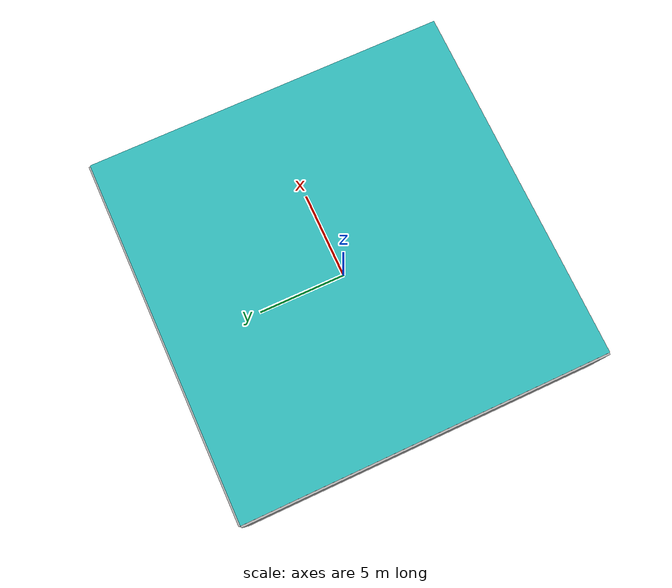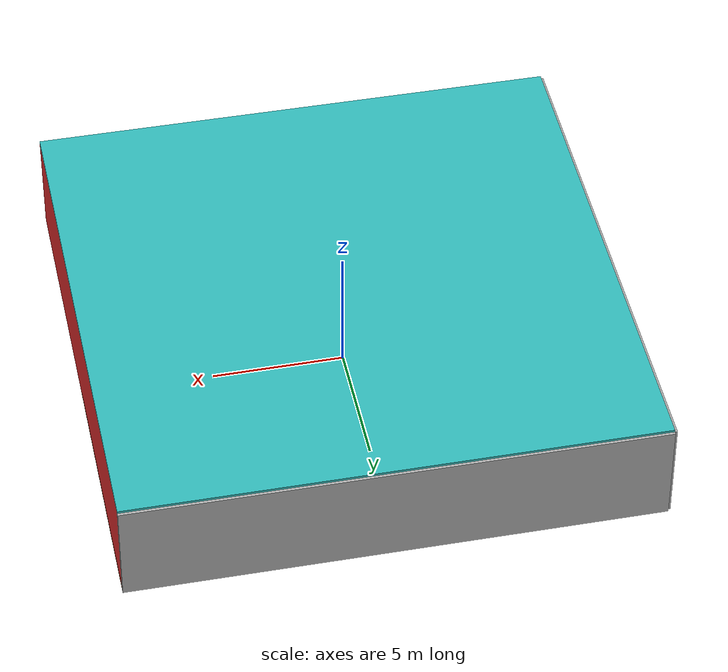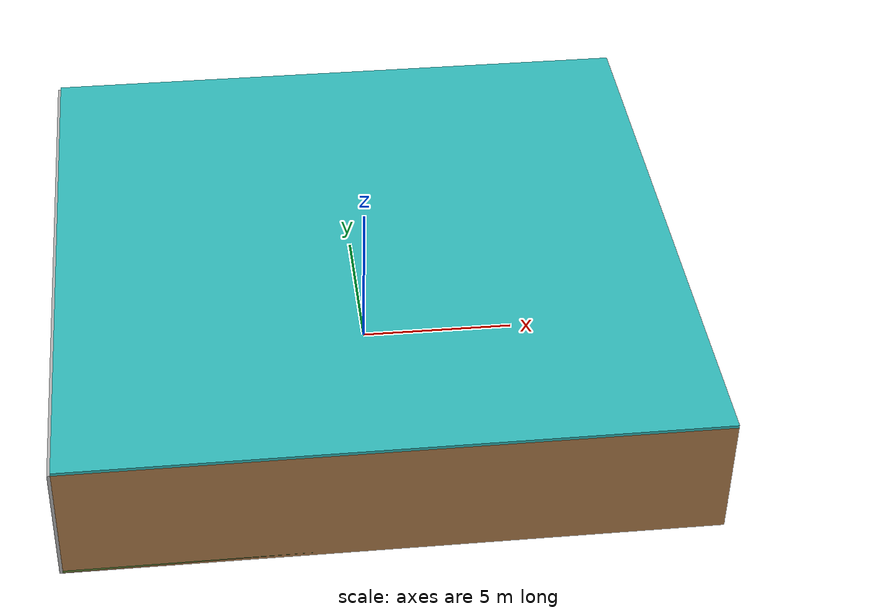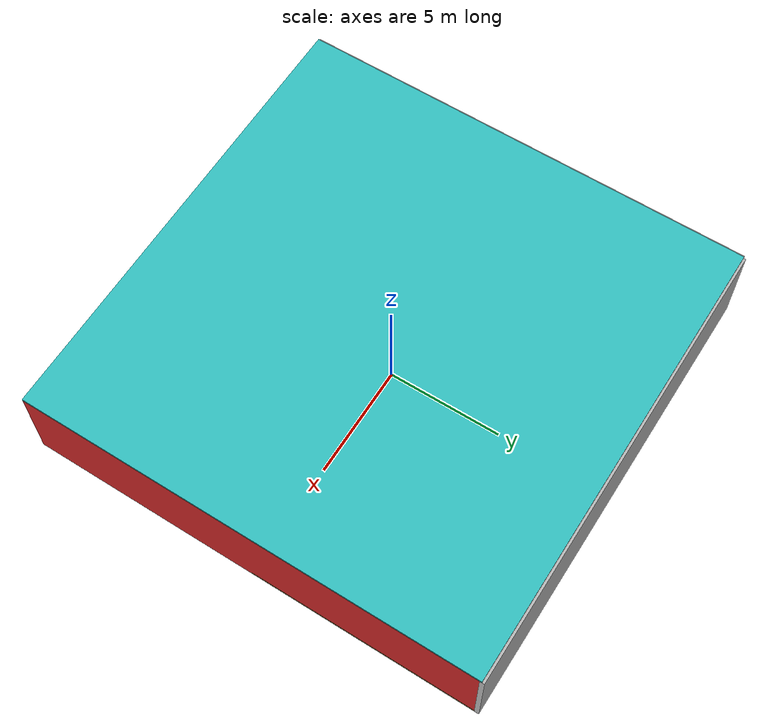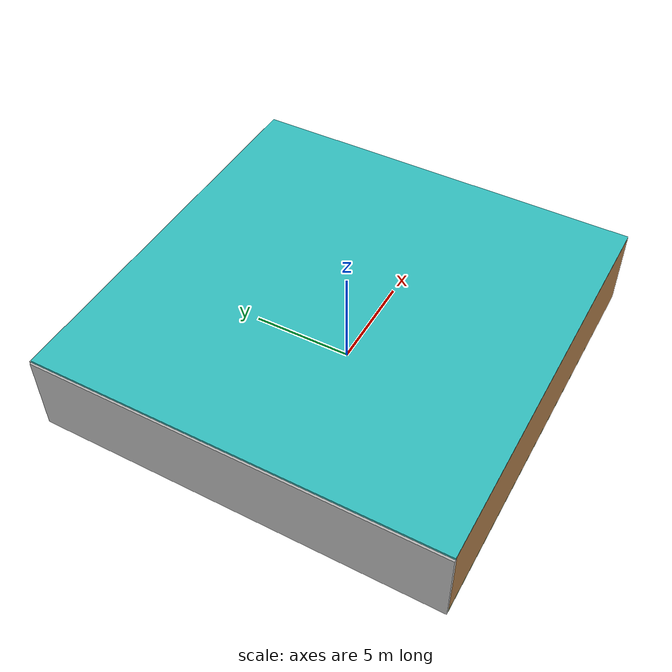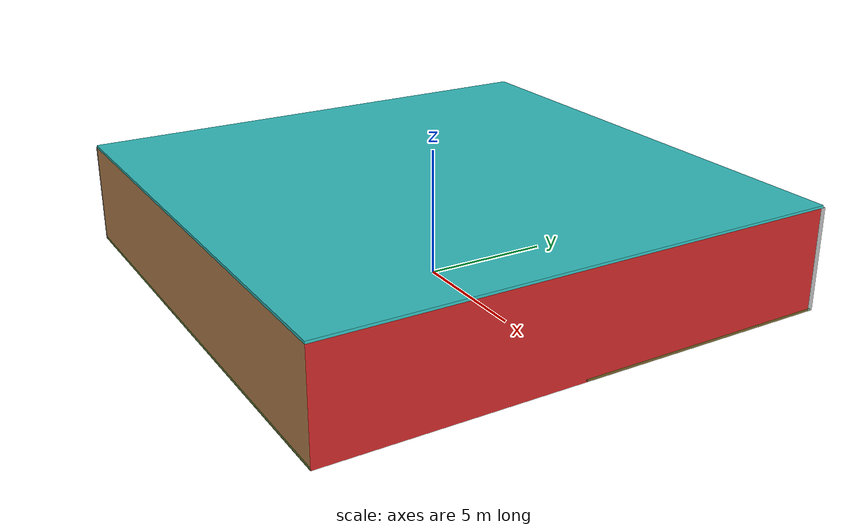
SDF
<sdf version="1.4">
 <world name="default">
  <physics type="ode">
   <max_step_size>0.001</max_step_size>
   <real_time_factor>1</real_time_factor>
   <real_time_update_rate>1000</real_time_update_rate>
   <gravity>0 0 -9.8</gravity>
  </physics>
  <scene><ambient>0.4 0.4 0.4 1</ambient><background>0.7 0.7 0.7 1</background><shadows>1</shadows></scene>
  <model name="Surrounding">
   <static>1</static>
   <link name="Ceiling">
    <collision name="Ceiling_Collision"><geometry><box><size>20 20 0.1</size></box></geometry></collision>
    <visual name="Ceiling_Visual">
     <geometry><box><size>20 20 0.1</size></box></geometry>
     <material>
      <script><uri>file://media/materials/scripts/gazebo.material</uri><name>Gazebo/TurquoiseGlow</name></script>
     </material>
    </visual>
    <pose>0 0 4.05 0 0 0</pose>
   </link>
   <link name="Wall_South">
    <collision name="Wall_South_Collision">
     <geometry><box><size>20 0 4</size></box></geometry>
     <pose>0 0 2 0 -0 0</pose>
    </collision>
    <visual name="Wall_South_Visual">
     <pose>0 0 2 0 -0 0</pose>
     <geometry><box><size>20 0 4</size></box></geometry>
     <material>
      <script><uri>file://media/materials/scripts/gazebo.material</uri><name>Gazebo/WoodFloor</name></script>
     </material>
    </visual>
    <velocity_decay><linear>0</linear><angular>0</angular></velocity_decay>
    <pose>0 -10 0 0 -0 0</pose>
   </link>
   <link name="Wall_East">
    <collision name="Wall_21_Collision">
     <geometry><box><size>20 0 4</size></box></geometry>
     <pose>0 0 2 0 -0 0</pose>
    </collision>
    <visual name="Wall_21_Visual">
     <pose>0 0 2 0 -0 0</pose>
     <geometry><box><size>20 0 4</size></box></geometry>
     <material>
      <script><uri>file://media/materials/scripts/gazebo.material</uri><name>Gazebo/RedGlow</name></script>
     </material>
    </visual>
    <velocity_decay><linear>0</linear><angular>0</angular></velocity_decay>
    <pose>10 0 0 0 -0 1.5708</pose>
   </link>
   <link name="Wall_North">
    <collision name="Wall_22_Collision">
     <geometry><box><size>20 0.2 4</size></box></geometry>
     <pose>0 0 2 0 -0 0</pose>
    </collision>
    <visual name="Wall_22_Visual">
     <pose>0 0 2 0 -0 0</pose>
     <geometry><box><size>20 0.2 4</size></box></geometry>
     <material>
      <script><uri>file://media/materials/scripts/gazebo.material</uri><name>Gazebo/CloudySky</name></script>
     </material>
    </visual>
    <velocity_decay><linear>0</linear><angular>0</angular></velocity_decay>
    <pose>0 10 0 0 -0 0</pose>
   </link>
   <link name="Wall_West">
    <collision name="Wall_23_Collision">
     <geometry><box><size>20 0.2 4</size></box></geometry>
     <pose>0 0 2 0 -0 0</pose>
    </collision>
    <visual name="Wall_23_Visual">
     <pose>0 0 2 0 -0 0</pose>
     <geometry><box><size>20 0.2 4</size></box></geometry>
     <material>
      <script><uri>file://media/materials/scripts/gazebo.material</uri><name>Gazebo/LightOn</name></script>
     </material>
    </visual>
    <velocity_decay><linear>0</linear><angular>0</angular></velocity_decay>
    <pose>-10 0 0 0 0 -1.5708</pose>
   </link>
   <link name="Ground_link">
    <collision name="collision">
     <pose>0 0 .05 0 -0 0</pose>
     <geometry><box><size>20 20 0.1</size></box></geometry>
    </collision>
    <visual name="visual">
     <pose>0 0 .05 0 -0 0</pose>
     <geometry><box><size>20 20 0.1</size></box></geometry>
     <material>
      <script><uri>file://media/materials/scripts/gazebo.material</uri><name>Gazebo/GreenTransparent</name></script>
     </material>
    </visual>
   </link>
   <static>1</static>
  </model>
  <spherical_coordinates>
   <surface_model>EARTH_WGS84</surface_model>
   <latitude_deg>0</latitude_deg>
   <longitude_deg>0</longitude_deg>
   <elevation>0</elevation>
   <heading_deg>0</heading_deg>
  </spherical_coordinates>
  <light name="lightball_0" type="diffuse">
   <diffuse>0.8 0.8 0.8 1</diffuse>
   <specular>0.2 0.2 0.2 1</specular>
   <attenuation>
    <range>100</range>
    <constant>0.7</constant>
    <linear>0.01</linear>
    <quadratic>0.001</quadratic>
   </attenuation>
   <direction>-0.5 0.1 -0.9</direction>
   <pose>-5.08586458689 -0.165865231003 1.89247291012 0 0 0</pose>
  </light>
  <light name="lightball_1" type="diffuse">
   <diffuse>0.8 0.8 0.8 1</diffuse>
   <specular>0.2 0.2 0.2 1</specular>
   <attenuation>
    <range>100</range>
    <constant>0.7</constant>
    <linear>0.01</linear>
    <quadratic>0.001</quadratic>
   </attenuation>
   <direction>-0.5 0.1 -0.9</direction>
   <pose>-0.573652635955 0.728162576116 1.51325811161 0 0 0</pose>
  </light>
  <light name="lightball_2" type="diffuse">
   <diffuse>0.8 0.8 0.8 1</diffuse>
   <specular>0.2 0.2 0.2 1</specular>
   <attenuation>
    <range>100</range>
    <constant>0.7</constant>
    <linear>0.01</linear>
    <quadratic>0.001</quadratic>
   </attenuation>
   <direction>-0.5 0.1 -0.9</direction>
   <pose>-9.31532758346 9.20640096316 1.00804409258 0 0 0</pose>
  </light>
  <light name="lightball_3" type="diffuse">
   <diffuse>0.8 0.8 0.8 1</diffuse>
   <specular>0.2 0.2 0.2 1</specular>
   <attenuation>
    <range>100</range>
    <constant>0.7</constant>
    <linear>0.01</linear>
    <quadratic>0.001</quadratic>
   </attenuation>
   <direction>-0.5 0.1 -0.9</direction>
   <pose>-2.97357514186 -3.82825893411 1.80119664161 0 0 0</pose>
  </light>
  <light name="lightball_4" type="diffuse">
   <diffuse>0.8 0.8 0.8 1</diffuse>
   <specular>0.2 0.2 0.2 1</specular>
   <attenuation>
    <range>100</range>
    <constant>0.7</constant>
    <linear>0.01</linear>
    <quadratic>0.001</quadratic>
   </attenuation>
   <direction>-0.5 0.1 -0.9</direction>
   <pose>5.57290476489 -6.53174360435 1.85223103178 0 0 0</pose>
  </light>
  <include><uri>model://table</uri><pose>-7.21563023096 -1.90903690604 0 0 0 1.96524174465</pose></include>
  <include>
   <uri>model://robocup_3Dsim_goal</uri>
   <pose>-7.40069570626 1.70832003274 0 0 0 0.447249541109</pose>
  </include>
  <include>
   <uri>model://robocup_3Dsim_goal</uri>
   <pose>-8.22177769836 7.77480852135 0 0 0 1.85065954184</pose>
  </include>
  <include>
   <uri>model://construction_cone</uri>
   <pose>-3.93299364881 -0.768519863762 0 0 0 2.14969560271</pose>
  </include>
  <include>
   <uri>model://textured_shapes</uri>
   <pose>1.31214402489 -1.7384245229 0 0 0 2.6787293648</pose>
  </include>
  <include>
   <uri>model://construction_cone</uri>
   <pose>1.9670426907 0.900466008197 0 0 0 1.26892642596</pose>
  </include>
  <include>
   <uri>model://robocup_3Dsim_goal</uri>
   <pose>0.84762226506 8.24454281723 0 0 0 2.25304382739</pose>
  </include>
 </world>
</sdf>

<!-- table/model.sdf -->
<sdf version="1.5">
  <model name="table">
    <static>true</static>
    <link name="link">
      <collision name="surface">
        <pose>0 0 1.0 0 0 0</pose>
        <geometry>
          <box>
            <size>1.5 0.8 0.03</size>
          </box>
        </geometry>
        <surface>
          <friction>
            <ode>
              <mu>0.6</mu>
              <mu2>0.6</mu2>
            </ode>
          </friction>
        </surface>
      </collision>
      <visual name="visual1">
        <pose>0 0 1.0 0 0 0</pose>
        <geometry>
          <box>
            <size>1.5 0.8 0.03</size>
          </box>
        </geometry>
        <material>
          <script>
            <uri>model://media/materials/scripts/gazebo.material</uri>
            <name>Gazebo/Wood</name>
          </script>
        </material>
      </visual>
      <collision name="front_left_leg">
        <pose>0.68 0.38 0.5 0 0 0</pose>
        <geometry>
          <cylinder>
            <radius>0.02</radius>
            <length>1.0</length>
          </cylinder>
        </geometry>
      </collision>
      <visual name="front_left_leg">
        <pose>0.68 0.38 0.5 0 0 0</pose>
        <geometry>
          <cylinder>
            <radius>0.02</radius>
            <length>1.0</length>
          </cylinder>
        </geometry>
        <material>
          <script>
            <uri>model://media/materials/scripts/gazebo.material</uri>
            <name>Gazebo/Grey</name>
          </script>
        </material>
      </visual>
      <collision name="front_right_leg">
        <pose>0.68 -0.38 0.5 0 0 0</pose>
        <geometry>
          <cylinder>
            <radius>0.02</radius>
            <length>1.0</length>
          </cylinder>
        </geometry>
      </collision>
      <visual name="front_right_leg">
        <pose>0.68 -0.38 0.5 0 0 0</pose>
        <geometry>
          <cylinder>
            <radius>0.02</radius>
            <length>1.0</length>
          </cylinder>
        </geometry>
        <material>
          <script>
            <uri>model://media/materials/scripts/gazebo.material</uri>
            <name>Gazebo/Grey</name>
          </script>
        </material>
      </visual>
      <collision name="back_right_leg">
        <pose>-0.68 -0.38 0.5 0 0 0</pose>
        <geometry>
          <cylinder>
            <radius>0.02</radius>
            <length>1.0</length>
          </cylinder>
        </geometry>
      </collision>
      <visual name="back_right_leg">
        <pose>-0.68 -0.38 0.5 0 0 0</pose>
        <geometry>
          <cylinder>
            <radius>0.02</radius>
            <length>1.0</length>
          </cylinder>
        </geometry>
        <material>
          <script>
            <uri>model://media/materials/scripts/gazebo.material</uri>
            <name>Gazebo/Grey</name>
          </script>
        </material>
      </visual>
      <collision name="back_left_leg">
        <pose>-0.68 0.38 0.5 0 0 0</pose>
        <geometry>
          <cylinder>
            <radius>0.02</radius>
            <length>1.0</length>
          </cylinder>
        </geometry>
      </collision>
      <visual name="back_left_leg">
        <pose>-0.68 0.38 0.5 0 0 0</pose>
        <geometry>
          <cylinder>
            <radius>0.02</radius>
            <length>1.0</length>
          </cylinder>
        </geometry>
        <material>
          <script>
            <uri>model://media/materials/scripts/gazebo.material</uri>
            <name>Gazebo/Grey</name>
          </script>
        </material>
      </visual>
    </link>
  </model>
</sdf>

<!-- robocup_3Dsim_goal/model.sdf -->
<sdf version="1.5">
  <model name="robocup_3d_goal">
    <static>true</static>
    <link name="left_post">
      <pose>0 1.05 0.45 0 0 0</pose>
      <collision name="collision">
        <geometry>
          <cylinder>
            <radius>0.05</radius>
            <length>0.9</length>
          </cylinder>
        </geometry>
      </collision>
      <visual name="visual">
        <geometry>
          <cylinder>
            <radius>0.05</radius>
            <length>0.9</length>
          </cylinder>
        </geometry>
        <material>
          <script>
            <uri>file://media/materials/scripts/gazebo.material</uri>
            <name>Gazebo/ZincYellow</name>
          </script>
        </material>
      </visual>
    </link>
    <link name="left_support_horiz_lower">
      <pose>0.30 1.05 0.01 0 0 0</pose>
      <collision name="collision">
        <geometry>
          <box>
            <size>0.50 0.02 0.02</size>
          </box>
        </geometry>
      </collision>
      <visual name="visual">
        <geometry>
          <box>
            <size>0.50 0.02 0.02</size>
          </box>
        </geometry>
        <material>
          <script>
            <uri>file://media/materials/scripts/gazebo.material</uri>
            <name>Gazebo/White</name>
          </script>
        </material>
      </visual>
    </link>
    <link name="left_support_horiz_upper">
      <pose>0.30 1.05 0.79 0 0 0</pose>
      <collision name="collision">
        <geometry>
          <box>
            <size>0.50 0.02 0.02</size>
          </box>
        </geometry>
      </collision>
      <visual name="visual">
        <geometry>
          <box>
            <size>0.50 0.02 0.02</size>
          </box>
        </geometry>
        <material>
          <script>
            <uri>file://media/materials/scripts/gazebo.material</uri>
            <name>Gazebo/White</name>
          </script>
        </material>
      </visual>
    </link>
    <link name="left_support_vertical">
      <pose>0.56 1.05 0.4 0 1.5708 0</pose>
      <collision name="collision">
        <geometry>
          <box>
            <size>0.80 0.02 0.02</size>
          </box>
        </geometry>
      </collision>
      <visual name="visual">
        <geometry>
          <box>
            <size>0.80 0.02 0.02</size>
          </box>
        </geometry>
        <material>
          <script>
            <uri>file://media/materials/scripts/gazebo.material</uri>
            <name>Gazebo/White</name>
          </script>
        </material>
      </visual>
    </link>
    <link name="right_support_horiz_lower">
      <pose>0.30 -1.05 0.01 0 0 0</pose>
      <collision name="collision">
        <geometry>
          <box>
            <size>0.50 0.02 0.02</size>
          </box>
        </geometry>
      </collision>
      <visual name="visual">
        <geometry>
          <box>
            <size>0.50 0.02 0.02</size>
          </box>
        </geometry>
        <material>
          <script>
            <uri>file://media/materials/scripts/gazebo.material</uri>
            <name>Gazebo/White</name>
          </script>
        </material>
      </visual>
    </link>
    <link name="right_support_horiz_upper">
      <pose>0.30 -1.05 0.79 0 0 0</pose>
      <collision name="collision">
        <geometry>
          <box>
            <size>0.50 0.02 0.02</size>
          </box>
        </geometry>
      </collision>
      <visual name="visual">
        <geometry>
          <box>
            <size>0.50 0.02 0.02</size>
          </box>
        </geometry>
        <material>
          <script>
            <uri>file://media/materials/scripts/gazebo.material</uri>
            <name>Gazebo/White</name>
          </script>
        </material>
      </visual>
    </link>
    <link name="right_support_vertical">
      <pose>0.56 -1.05 0.4 0 1.5708 0</pose>
      <collision name="collision">
        <geometry>
          <box>
            <size>0.80 0.02 0.02</size>
          </box>
        </geometry>
      </collision>
      <visual name="visual">
        <geometry>
          <box>
            <size>0.80 0.02 0.02</size>
          </box>
        </geometry>
        <material>
          <script>
            <uri>file://media/materials/scripts/gazebo.material</uri>
            <name>Gazebo/White</name>
          </script>
        </material>
      </visual>
    </link>
    <link name="center_support_horiz_lower">
      <pose>0.56 0 0.01 0 1.5708 0</pose>
      <collision name="collision">
        <geometry>
          <box>
            <size>0.02 2.08 0.02</size>
          </box>
        </geometry>
      </collision>
      <visual name="visual">
        <geometry>
          <box>
            <size>0.02 2.08 0.02</size>
          </box>
        </geometry>
        <material>
          <script>
            <uri>file://media/materials/scripts/gazebo.material</uri>
            <name>Gazebo/White</name>
          </script>
        </material>
      </visual>
    </link>
    <link name="center_support_horiz_upper">
      <pose>0.56 0 0.79 0 1.5708 0</pose>
      <collision name="collision">
        <geometry>
          <box>
            <size>0.02 2.08 0.02</size>
          </box>
        </geometry>
      </collision>
      <visual name="visual">
        <geometry>
          <box>
            <size>0.02 2.08 0.02</size>
          </box>
        </geometry>
        <material>
          <script>
            <uri>file://media/materials/scripts/gazebo.material</uri>
            <name>Gazebo/White</name>
          </script>
        </material>
      </visual>
    </link>
    <link name="right_post">
      <pose>0 -1.05 0.45 0 0 0</pose>
      <collision name="collision">
        <geometry>
          <cylinder>
            <radius>0.05</radius>
            <length>0.9</length>
          </cylinder>
        </geometry>
      </collision>
      <visual name="visual">
        <geometry>
          <cylinder>
            <radius>0.05</radius>
            <length>0.9</length>
          </cylinder>
        </geometry>
        <material>
          <script>
            <uri>file://media/materials/scripts/gazebo.material</uri>
            <name>Gazebo/ZincYellow</name>
          </script>
        </material>
      </visual>
    </link>
    <link name="crossbar">
      <pose>0 0 0.85 1.57 1.57 0</pose>
      <collision name="collision">
        <geometry>
          <cylinder>
            <radius>0.05</radius>
            <length>2.0</length>
          </cylinder>
        </geometry>
      </collision>
      <visual name="visual">
        <geometry>
          <cylinder>
            <radius>0.05</radius>
            <length>2.0</length>
          </cylinder>
        </geometry>
        <material>
          <script>
            <uri>file://media/materials/scripts/gazebo.material</uri>
            <name>Gazebo/ZincYellow</name>
          </script>
        </material>
      </visual>
    </link>
    <link name="center_net">
      <pose>0.56 0 0.40 0 0 0</pose>
      <collision name="collision">
        <geometry>
          <box>
            <size>0.01 2.1 0.80</size>
          </box>
        </geometry>
      </collision>
      <visual name="visual">
        <geometry>
          <box>
            <size>0.01 2.1 0.80</size>
          </box>
        </geometry>
        <material>
          <script>
            <uri>model://../model_source/models/robocup09_spl_field/materials/scripts/</uri>
            <uri>model://../model_source/models/robocup09_spl_field/materials/textures/</uri>
            <name>RoboCup/Net</name>
          </script>
        </material>
      </visual>
    </link>
    <link name="left_net">
      <pose>0.30 1.05 0.40 0 0 0</pose>
      <collision name="collision">
        <geometry>
          <box>
            <size>0.50 0.01 0.76</size>
          </box>
        </geometry>
      </collision>
      <visual name="visual">
        <geometry>
          <box>
            <size>0.50 0.01 0.76</size>
          </box>
        </geometry>
        <material>
          <script>
            <uri>model://../model_source/models/robocup09_spl_field/materials/scripts/</uri>
            <uri>model://../model_source/models/robocup09_spl_field/materials/textures/</uri>
            <name>RoboCup/Net</name>
          </script>
        </material>
      </visual>
    </link>
    <link name="right_net">
      <pose>0.30 -1.05 0.40 0 0 0</pose>
      <collision name="collision">
        <geometry>
          <box>
            <size>0.50 0.01 0.76</size>
          </box>
        </geometry>
      </collision>
      <visual name="visual">
        <geometry>
          <box>
            <size>0.50 0.01 0.76</size>
          </box>
        </geometry>
        <material>
          <script>
            <uri>model://../model_source/models/robocup09_spl_field/materials/scripts/</uri>
            <uri>model://../model_source/models/robocup09_spl_field/materials/textures/</uri>
            <name>RoboCup/Net</name>
          </script>
        </material>
      </visual>
    </link>
  </model>
</sdf>

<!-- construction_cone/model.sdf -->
<sdf version="1.5">
  <model name="Construction Cone">
    <link name="link">
      <collision name="collision">
        <geometry>
          <mesh>
            <scale>10 10 10</scale>
            <uri>file://isr-testbed/construction_cone/meshes/construction_cone.dae</uri>
          </mesh>
        </geometry>
      </collision>
      <visual name="visual">
        <geometry>
          <mesh>
            <scale>10 10 10</scale>
            <uri>file://isr-testbed/construction_cone/meshes/construction_cone.dae</uri>
          </mesh>
        </geometry>
      </visual>
    </link>
  </model>
</sdf>

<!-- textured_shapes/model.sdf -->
<sdf version="1.6">
  <model name="textured_shapes">
    <pose>0 0 0.5 0 0 0</pose>
    <link name="box">
      <pose>0 -1.5 0 0 0 0</pose>
      <collision name="collision">
        <geometry>
          <box>
            <size>1 1 1</size>
          </box>
        </geometry>
      </collision>
      <visual name="visual">
        <geometry>
          <box>
            <size>1 1 1</size>
          </box>
        </geometry>
        <material>
          <script>
            <uri>model://../model_source/models/textured_shapes/materials/scripts</uri>
            <uri>model://../model_source/models/textured_shapes/materials/textures</uri>
            <name>TexturedShape/Squares</name>
          </script>
        </material>
      </visual>
    </link>
    <link name="sphere">
      <collision name="collision">
        <geometry>
          <sphere>
            <radius>0.5</radius>
          </sphere>
        </geometry>
      </collision>
      <visual name="visual">
        <geometry>
          <sphere>
            <radius>0.5</radius>
          </sphere>
        </geometry>
        <material>
          <script>
            <uri>model://../model_source/models/textured_shapes/materials/scripts</uri>
            <uri>model://../model_source/models/textured_shapes/materials/textures</uri>
            <name>TexturedShape/Squares</name>
          </script>
        </material>
      </visual>
    </link>
    <link name="cylinder">
      <pose>0 1.5 0 0 0 0</pose>
      <collision name="collision">
        <geometry>
          <cylinder>
            <radius>0.5</radius>
            <length>1</length>
          </cylinder>
        </geometry>
      </collision>
      <visual name="visual">
        <geometry>
          <cylinder>
            <radius>0.5</radius>
            <length>1</length>
          </cylinder>
        </geometry>
        <material>
          <script>
            <uri>model://../model_source/models/textured_shapes/materials/scripts</uri>
            <uri>model://../model_source/models/textured_shapes/materials/textures</uri>
            <name>TexturedShape/Squares</name>
          </script>
        </material>
      </visual>
    </link>
  </model>
</sdf>
